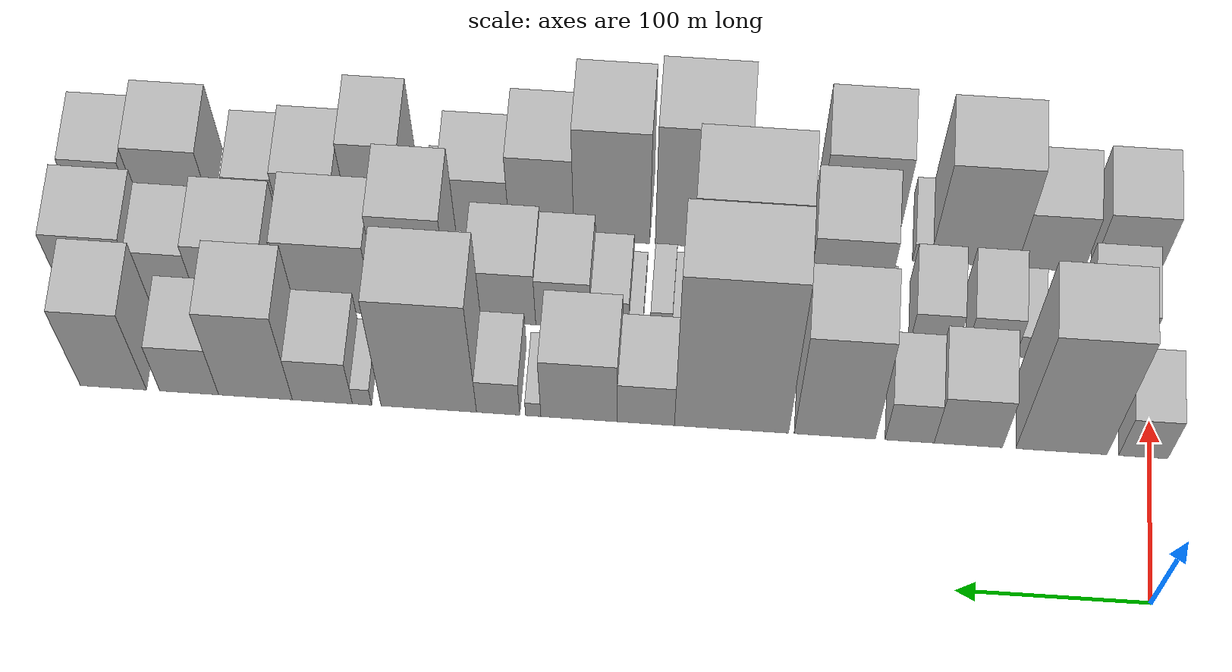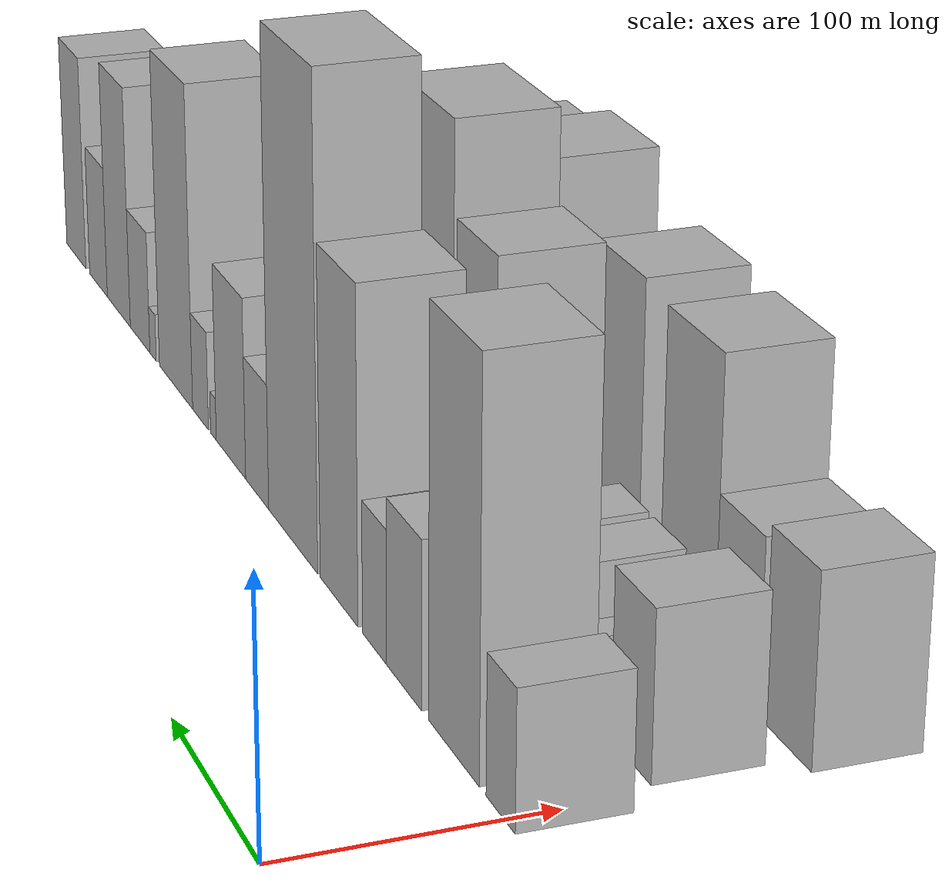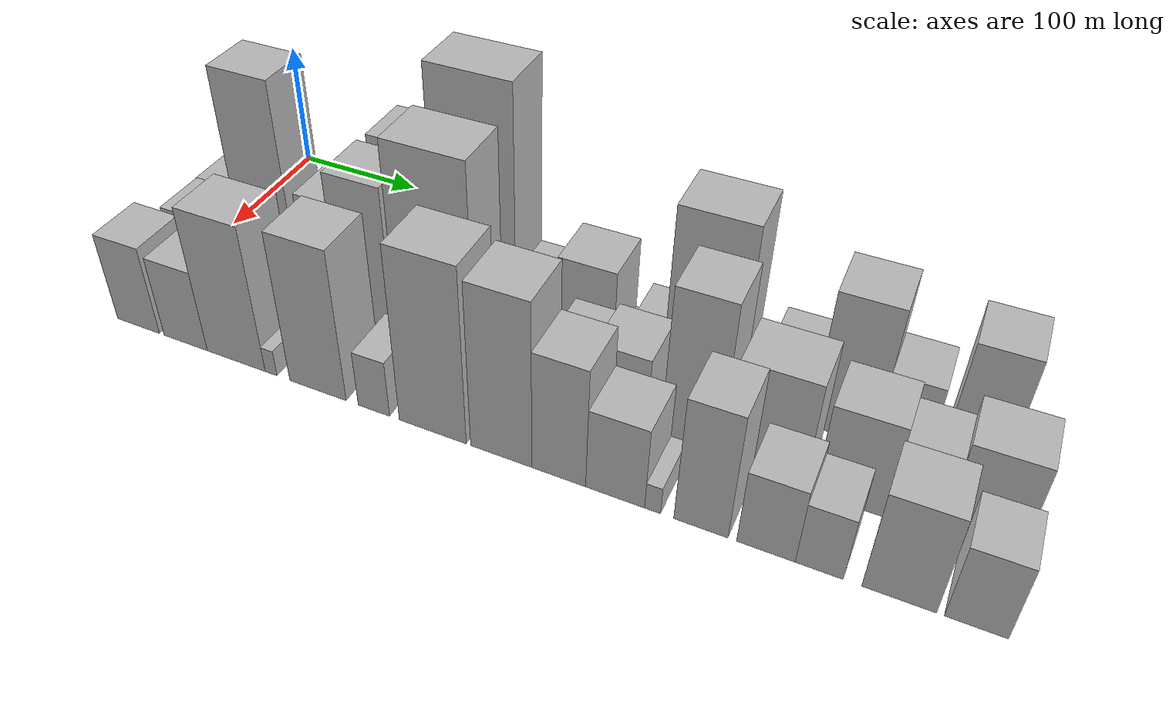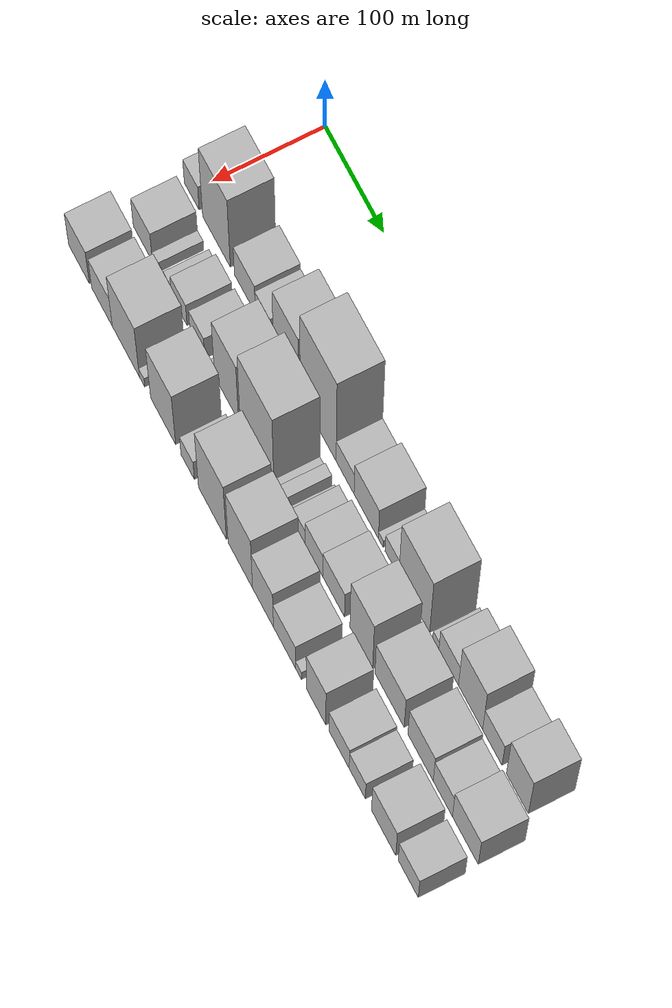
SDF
<sdf version="1.6">
 <world name="default">
  <model name="building_16">
   <static>1</static>
   <pose>100.0000 3.4860 0 0.000000 0.000000 0.000000</pose>
   <link name="link">
    <pose>0 0 25.50 0 0 0</pose>
    <collision name="collision"><geometry><box><size>40.0000 25.7153 51.0000</size></box></geometry></collision>
    <visual name="visual">
     <cast_shadows>0</cast_shadows>
     <geometry><box><size>40.0000 25.7153 51.0000</size></box></geometry>
     <material>
      <script>
       <uri>model://HANNAS_wall/materials/scripts</uri>
       <uri>model://HANNAS_wall/materials/textures</uri>
       <name>vrc/HANNAS_wall</name>
      </script>
     </material>
    </visual>
   </link>
  </model>
  <model name="building_17">
   <static>1</static>
   <pose>100.0000 46.1600 0 0.000000 0.000000 0.000000</pose>
   <link name="link">
    <pose>0 0 75.00 0 0 0</pose>
    <collision name="collision"><geometry><box><size>40.0000 47.6328 150.0000</size></box></geometry></collision>
    <visual name="visual">
     <cast_shadows>0</cast_shadows>
     <geometry><box><size>40.0000 47.6328 150.0000</size></box></geometry>
     <material>
      <script>
       <uri>model://HANNAS_wall/materials/scripts</uri>
       <uri>model://HANNAS_wall/materials/textures</uri>
       <name>vrc/HANNAS_wall</name>
      </script>
     </material>
    </visual>
   </link>
  </model>
  <model name="building_18">
   <static>1</static>
   <pose>100.0000 94.8382 0 0.000000 0.000000 0.000000</pose>
   <link name="link">
    <pose>0 0 31.50 0 0 0</pose>
    <collision name="collision"><geometry><box><size>40.0000 35.7236 63.0000</size></box></geometry></collision>
    <visual name="visual">
     <cast_shadows>0</cast_shadows>
     <geometry><box><size>40.0000 35.7236 63.0000</size></box></geometry>
     <material>
      <script>
       <uri>model://HANNAS_wall/materials/scripts</uri>
       <uri>model://HANNAS_wall/materials/textures</uri>
       <name>vrc/HANNAS_wall</name>
      </script>
     </material>
    </visual>
   </link>
  </model>
  <model name="building_19">
   <static>1</static>
   <pose>100.0000 125.5742 0 0.000000 0.000000 0.000000</pose>
   <link name="link">
    <pose>0 0 25.50 0 0 0</pose>
    <collision name="collision"><geometry><box><size>40.0000 25.7485 51.0000</size></box></geometry></collision>
    <visual name="visual">
     <cast_shadows>0</cast_shadows>
     <geometry><box><size>40.0000 25.7485 51.0000</size></box></geometry>
     <material>
      <script>
       <uri>model://HANNAS_wall/materials/scripts</uri>
       <uri>model://HANNAS_wall/materials/textures</uri>
       <name>vrc/HANNAS_wall</name>
      </script>
     </material>
    </visual>
   </link>
  </model>
  <model name="building_20">
   <static>1</static>
   <pose>100.0000 164.7653 0 0.000000 0.000000 0.000000</pose>
   <link name="link">
    <pose>0 0 64.50 0 0 0</pose>
    <collision name="collision"><geometry><box><size>40.0000 42.6338 129.0000</size></box></geometry></collision>
    <visual name="visual">
     <cast_shadows>0</cast_shadows>
     <geometry><box><size>40.0000 42.6338 129.0000</size></box></geometry>
     <material>
      <script>
       <uri>model://HANNAS_wall/materials/scripts</uri>
       <uri>model://HANNAS_wall/materials/textures</uri>
       <name>vrc/HANNAS_wall</name>
      </script>
     </material>
    </visual>
   </link>
  </model>
  <model name="building_21">
   <static>1</static>
   <pose>100.0000 219.0663 0 0.000000 0.000000 0.000000</pose>
   <link name="link">
    <pose>0 0 96.00 0 0 0</pose>
    <collision name="collision"><geometry><box><size>40.0000 59.9683 192.0000</size></box></geometry></collision>
    <visual name="visual">
     <cast_shadows>0</cast_shadows>
     <geometry><box><size>40.0000 59.9683 192.0000</size></box></geometry>
     <material>
      <script>
       <uri>model://HANNAS_wall/materials/scripts</uri>
       <uri>model://HANNAS_wall/materials/textures</uri>
       <name>vrc/HANNAS_wall</name>
      </script>
     </material>
    </visual>
   </link>
  </model>
  <model name="building_22">
   <static>1</static>
   <pose>100.0000 264.0907 0 0.000000 0.000000 0.000000</pose>
   <link name="link">
    <pose>0 0 25.50 0 0 0</pose>
    <collision name="collision"><geometry><box><size>40.0000 30.0804 51.0000</size></box></geometry></collision>
    <visual name="visual">
     <cast_shadows>0</cast_shadows>
     <geometry><box><size>40.0000 30.0804 51.0000</size></box></geometry>
     <material>
      <script>
       <uri>model://HANNAS_wall/materials/scripts</uri>
       <uri>model://HANNAS_wall/materials/textures</uri>
       <name>vrc/HANNAS_wall</name>
      </script>
     </material>
    </visual>
   </link>
  </model>
  <model name="building_23">
   <static>1</static>
   <pose>100.0000 299.2750 0 0.000000 0.000000 0.000000</pose>
   <link name="link">
    <pose>0 0 37.50 0 0 0</pose>
    <collision name="collision"><geometry><box><size>40.0000 40.2883 75.0000</size></box></geometry></collision>
    <visual name="visual">
     <cast_shadows>0</cast_shadows>
     <geometry><box><size>40.0000 40.2883 75.0000</size></box></geometry>
     <material>
      <script>
       <uri>model://HANNAS_wall/materials/scripts</uri>
       <uri>model://HANNAS_wall/materials/textures</uri>
       <name>vrc/HANNAS_wall</name>
      </script>
     </material>
    </visual>
   </link>
  </model>
  <model name="building_24">
   <static>1</static>
   <pose>100.0000 323.4559 0 0.000000 0.000000 0.000000</pose>
   <link name="link">
    <pose>0 0 9.00 0 0 0</pose>
    <collision name="collision"><geometry><box><size>40.0000 8.0735 18.0000</size></box></geometry></collision>
    <visual name="visual">
     <cast_shadows>0</cast_shadows>
     <geometry><box><size>40.0000 8.0735 18.0000</size></box></geometry>
     <material>
      <script>
       <uri>model://HANNAS_wall/materials/scripts</uri>
       <uri>model://HANNAS_wall/materials/textures</uri>
       <name>vrc/HANNAS_wall</name>
      </script>
     </material>
    </visual>
   </link>
  </model>
  <model name="building_25">
   <static>1</static>
   <pose>100.0000 341.9341 0 0.000000 0.000000 0.000000</pose>
   <link name="link">
    <pose>0 0 21.00 0 0 0</pose>
    <collision name="collision"><geometry><box><size>40.0000 22.8829 42.0000</size></box></geometry></collision>
    <visual name="visual">
     <cast_shadows>0</cast_shadows>
     <geometry><box><size>40.0000 22.8829 42.0000</size></box></geometry>
     <material>
      <script>
       <uri>model://HANNAS_wall/materials/scripts</uri>
       <uri>model://HANNAS_wall/materials/textures</uri>
       <name>vrc/HANNAS_wall</name>
      </script>
     </material>
    </visual>
   </link>
  </model>
  <model name="building_26">
   <static>1</static>
   <pose>100.0000 378.6242 0 0.000000 0.000000 0.000000</pose>
   <link name="link">
    <pose>0 0 69.00 0 0 0</pose>
    <collision name="collision"><geometry><box><size>40.0000 50.4972 138.0000</size></box></geometry></collision>
    <visual name="visual">
     <cast_shadows>0</cast_shadows>
     <geometry><box><size>40.0000 50.4972 138.0000</size></box></geometry>
     <material>
      <script>
       <uri>model://HANNAS_wall/materials/scripts</uri>
       <uri>model://HANNAS_wall/materials/textures</uri>
       <name>vrc/HANNAS_wall</name>
      </script>
     </material>
    </visual>
   </link>
  </model>
  <model name="building_27">
   <static>1</static>
   <pose>100.0000 413.9518 0 0.000000 0.000000 0.000000</pose>
   <link name="link">
    <pose>0 0 10.50 0 0 0</pose>
    <collision name="collision"><geometry><box><size>40.0000 10.1581 21.0000</size></box></geometry></collision>
    <visual name="visual">
     <cast_shadows>0</cast_shadows>
     <geometry><box><size>40.0000 10.1581 21.0000</size></box></geometry>
     <material>
      <script>
       <uri>model://HANNAS_wall/materials/scripts</uri>
       <uri>model://HANNAS_wall/materials/textures</uri>
       <name>vrc/HANNAS_wall</name>
      </script>
     </material>
    </visual>
   </link>
  </model>
  <model name="building_28">
   <static>1</static>
   <pose>100.0000 434.9588 0 0.000000 0.000000 0.000000</pose>
   <link name="link">
    <pose>0 0 27.00 0 0 0</pose>
    <collision name="collision"><geometry><box><size>40.0000 31.8559 54.0000</size></box></geometry></collision>
    <visual name="visual">
     <cast_shadows>0</cast_shadows>
     <geometry><box><size>40.0000 31.8559 54.0000</size></box></geometry>
     <material>
      <script>
       <uri>model://HANNAS_wall/materials/scripts</uri>
       <uri>model://HANNAS_wall/materials/textures</uri>
       <name>vrc/HANNAS_wall</name>
      </script>
     </material>
    </visual>
   </link>
  </model>
  <model name="building_29">
   <static>1</static>
   <pose>100.0000 470.4755 0 0.000000 0.000000 0.000000</pose>
   <link name="link">
    <pose>0 0 54.00 0 0 0</pose>
    <collision name="collision"><geometry><box><size>40.0000 39.1775 108.0000</size></box></geometry></collision>
    <visual name="visual">
     <cast_shadows>0</cast_shadows>
     <geometry><box><size>40.0000 39.1775 108.0000</size></box></geometry>
     <material>
      <script>
       <uri>model://HANNAS_wall/materials/scripts</uri>
       <uri>model://HANNAS_wall/materials/textures</uri>
       <name>vrc/HANNAS_wall</name>
      </script>
     </material>
    </visual>
   </link>
  </model>
  <model name="building_30">
   <static>1</static>
   <pose>100.0000 505.7085 0 0.000000 0.000000 0.000000</pose>
   <link name="link">
    <pose>0 0 30.00 0 0 0</pose>
    <collision name="collision"><geometry><box><size>40.0000 31.2883 60.0000</size></box></geometry></collision>
    <visual name="visual">
     <cast_shadows>0</cast_shadows>
     <geometry><box><size>40.0000 31.2883 60.0000</size></box></geometry>
     <material>
      <script>
       <uri>model://HANNAS_wall/materials/scripts</uri>
       <uri>model://HANNAS_wall/materials/textures</uri>
       <name>vrc/HANNAS_wall</name>
      </script>
     </material>
    </visual>
   </link>
  </model>
  <model name="building_31">
   <static>1</static>
   <pose>100.0000 545.9888 0 0.000000 0.000000 0.000000</pose>
   <link name="link">
    <pose>0 0 49.50 0 0 0</pose>
    <collision name="collision"><geometry><box><size>40.0000 35.2724 99.0000</size></box></geometry></collision>
    <visual name="visual">
     <cast_shadows>0</cast_shadows>
     <geometry><box><size>40.0000 35.2724 99.0000</size></box></geometry>
     <material>
      <script>
       <uri>model://HANNAS_wall/materials/scripts</uri>
       <uri>model://HANNAS_wall/materials/textures</uri>
       <name>vrc/HANNAS_wall</name>
      </script>
     </material>
    </visual>
   </link>
  </model>
  <model name="building_48">
   <static>1</static>
   <pose>152.0000 21.1618 0 0.000000 0.000000 0.000000</pose>
   <link name="link">
    <pose>0 0 31.50 0 0 0</pose>
    <collision name="collision"><geometry><box><size>40.0000 33.1326 63.0000</size></box></geometry></collision>
    <visual name="visual">
     <cast_shadows>0</cast_shadows>
     <geometry><box><size>40.0000 33.1326 63.0000</size></box></geometry>
     <material>
      <script>
       <uri>model://HANNAS_wall/materials/scripts</uri>
       <uri>model://HANNAS_wall/materials/textures</uri>
       <name>vrc/HANNAS_wall</name>
      </script>
     </material>
    </visual>
   </link>
  </model>
  <model name="building_49">
   <static>1</static>
   <pose>152.0000 42.7620 0 0.000000 0.000000 0.000000</pose>
   <link name="link">
    <pose>0 0 10.50 0 0 0</pose>
    <collision name="collision"><geometry><box><size>40.0000 10.0676 21.0000</size></box></geometry></collision>
    <visual name="visual">
     <cast_shadows>0</cast_shadows>
     <geometry><box><size>40.0000 10.0676 21.0000</size></box></geometry>
     <material>
      <script>
       <uri>model://HANNAS_wall/materials/scripts</uri>
       <uri>model://HANNAS_wall/materials/textures</uri>
       <name>vrc/HANNAS_wall</name>
      </script>
     </material>
    </visual>
   </link>
  </model>
  <model name="building_50">
   <static>1</static>
   <pose>152.0000 64.2689 0 0.000000 0.000000 0.000000</pose>
   <link name="link">
    <pose>0 0 13.50 0 0 0</pose>
    <collision name="collision"><geometry><box><size>40.0000 12.9463 27.0000</size></box></geometry></collision>
    <visual name="visual">
     <cast_shadows>0</cast_shadows>
     <geometry><box><size>40.0000 12.9463 27.0000</size></box></geometry>
     <material>
      <script>
       <uri>model://HANNAS_wall/materials/scripts</uri>
       <uri>model://HANNAS_wall/materials/textures</uri>
       <name>vrc/HANNAS_wall</name>
      </script>
     </material>
    </visual>
   </link>
  </model>
  <model name="building_51">
   <static>1</static>
   <pose>152.0000 84.0770 0 0.000000 0.000000 0.000000</pose>
   <link name="link">
    <pose>0 0 24.00 0 0 0</pose>
    <collision name="collision"><geometry><box><size>40.0000 26.6699 48.0000</size></box></geometry></collision>
    <visual name="visual">
     <cast_shadows>0</cast_shadows>
     <geometry><box><size>40.0000 26.6699 48.0000</size></box></geometry>
     <material>
      <script>
       <uri>model://HANNAS_wall/materials/scripts</uri>
       <uri>model://HANNAS_wall/materials/textures</uri>
       <name>vrc/HANNAS_wall</name>
      </script>
     </material>
    </visual>
   </link>
  </model>
  <model name="building_52">
   <static>1</static>
   <pose>152.0000 115.1577 0 0.000000 0.000000 0.000000</pose>
   <link name="link">
    <pose>0 0 24.00 0 0 0</pose>
    <collision name="collision"><geometry><box><size>40.0000 25.4915 48.0000</size></box></geometry></collision>
    <visual name="visual">
     <cast_shadows>0</cast_shadows>
     <geometry><box><size>40.0000 25.4915 48.0000</size></box></geometry>
     <material>
      <script>
       <uri>model://HANNAS_wall/materials/scripts</uri>
       <uri>model://HANNAS_wall/materials/textures</uri>
       <name>vrc/HANNAS_wall</name>
      </script>
     </material>
    </visual>
   </link>
  </model>
  <model name="building_53">
   <static>1</static>
   <pose>152.0000 140.2911 0 0.000000 0.000000 0.000000</pose>
   <link name="link">
    <pose>0 0 9.00 0 0 0</pose>
    <collision name="collision"><geometry><box><size>40.0000 8.7753 18.0000</size></box></geometry></collision>
    <visual name="visual">
     <cast_shadows>0</cast_shadows>
     <geometry><box><size>40.0000 8.7753 18.0000</size></box></geometry>
     <material>
      <script>
       <uri>model://HANNAS_wall/materials/scripts</uri>
       <uri>model://HANNAS_wall/materials/textures</uri>
       <name>vrc/HANNAS_wall</name>
      </script>
     </material>
    </visual>
   </link>
  </model>
  <model name="building_54">
   <static>1</static>
   <pose>152.0000 164.9378 0 0.000000 0.000000 0.000000</pose>
   <link name="link">
    <pose>0 0 66.00 0 0 0</pose>
    <collision name="collision"><geometry><box><size>40.0000 40.5182 132.0000</size></box></geometry></collision>
    <visual name="visual">
     <cast_shadows>0</cast_shadows>
     <geometry><box><size>40.0000 40.5182 132.0000</size></box></geometry>
     <material>
      <script>
       <uri>model://HANNAS_wall/materials/scripts</uri>
       <uri>model://HANNAS_wall/materials/textures</uri>
       <name>vrc/HANNAS_wall</name>
      </script>
     </material>
    </visual>
   </link>
  </model>
  <model name="building_55">
   <static>1</static>
   <pose>152.0000 216.6067 0 0.000000 0.000000 0.000000</pose>
   <link name="link">
    <pose>0 0 84.00 0 0 0</pose>
    <collision name="collision"><geometry><box><size>40.0000 56.8195 168.0000</size></box></geometry></collision>
    <visual name="visual">
     <cast_shadows>0</cast_shadows>
     <geometry><box><size>40.0000 56.8195 168.0000</size></box></geometry>
     <material>
      <script>
       <uri>model://HANNAS_wall/materials/scripts</uri>
       <uri>model://HANNAS_wall/materials/textures</uri>
       <name>vrc/HANNAS_wall</name>
      </script>
     </material>
    </visual>
   </link>
  </model>
  <model name="building_56">
   <static>1</static>
   <pose>152.0000 249.3709 0 0.000000 0.000000 0.000000</pose>
   <link name="link">
    <pose>0 0 9.00 0 0 0</pose>
    <collision name="collision"><geometry><box><size>40.0000 8.7090 18.0000</size></box></geometry></collision>
    <visual name="visual">
     <cast_shadows>0</cast_shadows>
     <geometry><box><size>40.0000 8.7090 18.0000</size></box></geometry>
     <material>
      <script>
       <uri>model://HANNAS_wall/materials/scripts</uri>
       <uri>model://HANNAS_wall/materials/textures</uri>
       <name>vrc/HANNAS_wall</name>
      </script>
     </material>
    </visual>
   </link>
  </model>
  <model name="building_57">
   <static>1</static>
   <pose>152.0000 259.5027 0 0.000000 0.000000 0.000000</pose>
   <link name="link">
    <pose>0 0 13.50 0 0 0</pose>
    <collision name="collision"><geometry><box><size>40.0000 11.5546 27.0000</size></box></geometry></collision>
    <visual name="visual">
     <cast_shadows>0</cast_shadows>
     <geometry><box><size>40.0000 11.5546 27.0000</size></box></geometry>
     <material>
      <script>
       <uri>model://HANNAS_wall/materials/scripts</uri>
       <uri>model://HANNAS_wall/materials/textures</uri>
       <name>vrc/HANNAS_wall</name>
      </script>
     </material>
    </visual>
   </link>
  </model>
  <model name="building_58">
   <static>1</static>
   <pose>152.0000 272.9842 0 0.000000 0.000000 0.000000</pose>
   <link name="link">
    <pose>0 0 7.50 0 0 0</pose>
    <collision name="collision"><geometry><box><size>40.0000 7.4084 15.0000</size></box></geometry></collision>
    <visual name="visual">
     <cast_shadows>0</cast_shadows>
     <geometry><box><size>40.0000 7.4084 15.0000</size></box></geometry>
     <material>
      <script>
       <uri>model://HANNAS_wall/materials/scripts</uri>
       <uri>model://HANNAS_wall/materials/textures</uri>
       <name>vrc/HANNAS_wall</name>
      </script>
     </material>
    </visual>
   </link>
  </model>
  <model name="building_59">
   <static>1</static>
   <pose>152.0000 286.9562 0 0.000000 0.000000 0.000000</pose>
   <link name="link">
    <pose>0 0 18.00 0 0 0</pose>
    <collision name="collision"><geometry><box><size>40.0000 20.5356 36.0000</size></box></geometry></collision>
    <visual name="visual">
     <cast_shadows>0</cast_shadows>
     <geometry><box><size>40.0000 20.5356 36.0000</size></box></geometry>
     <material>
      <script>
       <uri>model://HANNAS_wall/materials/scripts</uri>
       <uri>model://HANNAS_wall/materials/textures</uri>
       <name>vrc/HANNAS_wall</name>
      </script>
     </material>
    </visual>
   </link>
  </model>
  <model name="building_60">
   <static>1</static>
   <pose>152.0000 311.8248 0 0.000000 0.000000 0.000000</pose>
   <link name="link">
    <pose>0 0 28.50 0 0 0</pose>
    <collision name="collision"><geometry><box><size>40.0000 29.2014 57.0000</size></box></geometry></collision>
    <visual name="visual">
     <cast_shadows>0</cast_shadows>
     <geometry><box><size>40.0000 29.2014 57.0000</size></box></geometry>
     <material>
      <script>
       <uri>model://HANNAS_wall/materials/scripts</uri>
       <uri>model://HANNAS_wall/materials/textures</uri>
       <name>vrc/HANNAS_wall</name>
      </script>
     </material>
    </visual>
   </link>
  </model>
  <model name="building_61">
   <static>1</static>
   <pose>152.0000 344.5707 0 0.000000 0.000000 0.000000</pose>
   <link name="link">
    <pose>0 0 31.50 0 0 0</pose>
    <collision name="collision"><geometry><box><size>40.0000 36.2905 63.0000</size></box></geometry></collision>
    <visual name="visual">
     <cast_shadows>0</cast_shadows>
     <geometry><box><size>40.0000 36.2905 63.0000</size></box></geometry>
     <material>
      <script>
       <uri>model://HANNAS_wall/materials/scripts</uri>
       <uri>model://HANNAS_wall/materials/textures</uri>
       <name>vrc/HANNAS_wall</name>
      </script>
     </material>
    </visual>
   </link>
  </model>
  <model name="building_62">
   <static>1</static>
   <pose>152.0000 390.3841 0 0.000000 0.000000 0.000000</pose>
   <link name="link">
    <pose>0 0 61.50 0 0 0</pose>
    <collision name="collision"><geometry><box><size>40.0000 37.3363 123.0000</size></box></geometry></collision>
    <visual name="visual">
     <cast_shadows>0</cast_shadows>
     <geometry><box><size>40.0000 37.3363 123.0000</size></box></geometry>
     <material>
      <script>
       <uri>model://HANNAS_wall/materials/scripts</uri>
       <uri>model://HANNAS_wall/materials/textures</uri>
       <name>vrc/HANNAS_wall</name>
      </script>
     </material>
    </visual>
   </link>
  </model>
  <model name="building_63">
   <static>1</static>
   <pose>152.0000 436.9797 0 0.000000 0.000000 0.000000</pose>
   <link name="link">
    <pose>0 0 42.00 0 0 0</pose>
    <collision name="collision"><geometry><box><size>40.0000 47.8548 84.0000</size></box></geometry></collision>
    <visual name="visual">
     <cast_shadows>0</cast_shadows>
     <geometry><box><size>40.0000 47.8548 84.0000</size></box></geometry>
     <material>
      <script>
       <uri>model://HANNAS_wall/materials/scripts</uri>
       <uri>model://HANNAS_wall/materials/textures</uri>
       <name>vrc/HANNAS_wall</name>
      </script>
     </material>
    </visual>
   </link>
  </model>
  <model name="building_64">
   <static>1</static>
   <pose>152.0000 487.4974 0 0.000000 0.000000 0.000000</pose>
   <link name="link">
    <pose>0 0 36.00 0 0 0</pose>
    <collision name="collision"><geometry><box><size>40.0000 41.1808 72.0000</size></box></geometry></collision>
    <visual name="visual">
     <cast_shadows>0</cast_shadows>
     <geometry><box><size>40.0000 41.1808 72.0000</size></box></geometry>
     <material>
      <script>
       <uri>model://HANNAS_wall/materials/scripts</uri>
       <uri>model://HANNAS_wall/materials/textures</uri>
       <name>vrc/HANNAS_wall</name>
      </script>
     </material>
    </visual>
   </link>
  </model>
  <model name="building_65">
   <static>1</static>
   <pose>152.0000 523.5968 0 0.000000 0.000000 0.000000</pose>
   <link name="link">
    <pose>0 0 30.00 0 0 0</pose>
    <collision name="collision"><geometry><box><size>40.0000 31.0179 60.0000</size></box></geometry></collision>
    <visual name="visual">
     <cast_shadows>0</cast_shadows>
     <geometry><box><size>40.0000 31.0179 60.0000</size></box></geometry>
     <material>
      <script>
       <uri>model://HANNAS_wall/materials/scripts</uri>
       <uri>model://HANNAS_wall/materials/textures</uri>
       <name>vrc/HANNAS_wall</name>
      </script>
     </material>
    </visual>
   </link>
  </model>
  <model name="building_66">
   <static>1</static>
   <pose>152.0000 559.9212 0 0.000000 0.000000 0.000000</pose>
   <link name="link">
    <pose>0 0 37.50 0 0 0</pose>
    <collision name="collision"><geometry><box><size>40.0000 41.6310 75.0000</size></box></geometry></collision>
    <visual name="visual">
     <cast_shadows>0</cast_shadows>
     <geometry><box><size>40.0000 41.6310 75.0000</size></box></geometry>
     <material>
      <script>
       <uri>model://HANNAS_wall/materials/scripts</uri>
       <uri>model://HANNAS_wall/materials/textures</uri>
       <name>vrc/HANNAS_wall</name>
      </script>
     </material>
    </visual>
   </link>
  </model>
  <model name="building_86">
   <static>1</static>
   <pose>204.0000 13.1575 0 0.000000 0.000000 0.000000</pose>
   <link name="link">
    <pose>0 0 36.00 0 0 0</pose>
    <collision name="collision"><geometry><box><size>40.0000 36.0670 72.0000</size></box></geometry></collision>
    <visual name="visual">
     <cast_shadows>0</cast_shadows>
     <geometry><box><size>40.0000 36.0670 72.0000</size></box></geometry>
     <material>
      <script>
       <uri>model://HANNAS_wall/materials/scripts</uri>
       <uri>model://HANNAS_wall/materials/textures</uri>
       <name>vrc/HANNAS_wall</name>
      </script>
     </material>
    </visual>
   </link>
  </model>
  <model name="building_87">
   <static>1</static>
   <pose>204.0000 53.1806 0 0.000000 0.000000 0.000000</pose>
   <link name="link">
    <pose>0 0 33.00 0 0 0</pose>
    <collision name="collision"><geometry><box><size>40.0000 35.9793 66.0000</size></box></geometry></collision>
    <visual name="visual">
     <cast_shadows>0</cast_shadows>
     <geometry><box><size>40.0000 35.9793 66.0000</size></box></geometry>
     <material>
      <script>
       <uri>model://HANNAS_wall/materials/scripts</uri>
       <uri>model://HANNAS_wall/materials/textures</uri>
       <name>vrc/HANNAS_wall</name>
      </script>
     </material>
    </visual>
   </link>
  </model>
  <model name="building_88">
   <static>1</static>
   <pose>204.0000 94.5277 0 0.000000 0.000000 0.000000</pose>
   <link name="link">
    <pose>0 0 58.50 0 0 0</pose>
    <collision name="collision"><geometry><box><size>40.0000 46.7149 117.0000</size></box></geometry></collision>
    <visual name="visual">
     <cast_shadows>0</cast_shadows>
     <geometry><box><size>40.0000 46.7149 117.0000</size></box></geometry>
     <material>
      <script>
       <uri>model://HANNAS_wall/materials/scripts</uri>
       <uri>model://HANNAS_wall/materials/textures</uri>
       <name>vrc/HANNAS_wall</name>
      </script>
     </material>
    </visual>
   </link>
  </model>
  <model name="building_89">
   <static>1</static>
   <pose>204.0000 122.5252 0 0.000000 0.000000 0.000000</pose>
   <link name="link">
    <pose>0 0 10.50 0 0 0</pose>
    <collision name="collision"><geometry><box><size>40.0000 9.2803 21.0000</size></box></geometry></collision>
    <visual name="visual">
     <cast_shadows>0</cast_shadows>
     <geometry><box><size>40.0000 9.2803 21.0000</size></box></geometry>
     <material>
      <script>
       <uri>model://HANNAS_wall/materials/scripts</uri>
       <uri>model://HANNAS_wall/materials/textures</uri>
       <name>vrc/HANNAS_wall</name>
      </script>
     </material>
    </visual>
   </link>
  </model>
  <model name="building_90">
   <static>1</static>
   <pose>204.0000 158.5972 0 0.000000 0.000000 0.000000</pose>
   <link name="link">
    <pose>0 0 60.00 0 0 0</pose>
    <collision name="collision"><geometry><box><size>40.0000 42.8636 120.0000</size></box></geometry></collision>
    <visual name="visual">
     <cast_shadows>0</cast_shadows>
     <geometry><box><size>40.0000 42.8636 120.0000</size></box></geometry>
     <material>
      <script>
       <uri>model://HANNAS_wall/materials/scripts</uri>
       <uri>model://HANNAS_wall/materials/textures</uri>
       <name>vrc/HANNAS_wall</name>
      </script>
     </material>
    </visual>
   </link>
  </model>
  <model name="building_91">
   <static>1</static>
   <pose>204.0000 200.4703 0 0.000000 0.000000 0.000000</pose>
   <link name="link">
    <pose>0 0 22.50 0 0 0</pose>
    <collision name="collision"><geometry><box><size>40.0000 22.8826 45.0000</size></box></geometry></collision>
    <visual name="visual">
     <cast_shadows>0</cast_shadows>
     <geometry><box><size>40.0000 22.8826 45.0000</size></box></geometry>
     <material>
      <script>
       <uri>model://HANNAS_wall/materials/scripts</uri>
       <uri>model://HANNAS_wall/materials/textures</uri>
       <name>vrc/HANNAS_wall</name>
      </script>
     </material>
    </visual>
   </link>
  </model>
  <model name="building_92">
   <static>1</static>
   <pose>204.0000 242.4706 0 0.000000 0.000000 0.000000</pose>
   <link name="link">
    <pose>0 0 69.00 0 0 0</pose>
    <collision name="collision"><geometry><box><size>40.0000 47.1180 138.0000</size></box></geometry></collision>
    <visual name="visual">
     <cast_shadows>0</cast_shadows>
     <geometry><box><size>40.0000 47.1180 138.0000</size></box></geometry>
     <material>
      <script>
       <uri>model://HANNAS_wall/materials/scripts</uri>
       <uri>model://HANNAS_wall/materials/textures</uri>
       <name>vrc/HANNAS_wall</name>
      </script>
     </material>
    </visual>
   </link>
  </model>
  <model name="building_93">
   <static>1</static>
   <pose>204.0000 289.5169 0 0.000000 0.000000 0.000000</pose>
   <link name="link">
    <pose>0 0 64.50 0 0 0</pose>
    <collision name="collision"><geometry><box><size>40.0000 40.9747 129.0000</size></box></geometry></collision>
    <visual name="visual">
     <cast_shadows>0</cast_shadows>
     <geometry><box><size>40.0000 40.9747 129.0000</size></box></geometry>
     <material>
      <script>
       <uri>model://HANNAS_wall/materials/scripts</uri>
       <uri>model://HANNAS_wall/materials/textures</uri>
       <name>vrc/HANNAS_wall</name>
      </script>
     </material>
    </visual>
   </link>
  </model>
  <model name="building_94">
   <static>1</static>
   <pose>204.0000 327.4829 0 0.000000 0.000000 0.000000</pose>
   <link name="link">
    <pose>0 0 46.50 0 0 0</pose>
    <collision name="collision"><geometry><box><size>40.0000 34.9572 93.0000</size></box></geometry></collision>
    <visual name="visual">
     <cast_shadows>0</cast_shadows>
     <geometry><box><size>40.0000 34.9572 93.0000</size></box></geometry>
     <material>
      <script>
       <uri>model://HANNAS_wall/materials/scripts</uri>
       <uri>model://HANNAS_wall/materials/textures</uri>
       <name>vrc/HANNAS_wall</name>
      </script>
     </material>
    </visual>
   </link>
  </model>
  <model name="building_95">
   <static>1</static>
   <pose>204.0000 363.3691 0 0.000000 0.000000 0.000000</pose>
   <link name="link">
    <pose>0 0 31.50 0 0 0</pose>
    <collision name="collision"><geometry><box><size>40.0000 36.8152 63.0000</size></box></geometry></collision>
    <visual name="visual">
     <cast_shadows>0</cast_shadows>
     <geometry><box><size>40.0000 36.8152 63.0000</size></box></geometry>
     <material>
      <script>
       <uri>model://HANNAS_wall/materials/scripts</uri>
       <uri>model://HANNAS_wall/materials/textures</uri>
       <name>vrc/HANNAS_wall</name>
      </script>
     </material>
    </visual>
   </link>
  </model>
  <model name="building_96">
   <static>1</static>
   <pose>204.0000 386.6671 0 0.000000 0.000000 0.000000</pose>
   <link name="link">
    <pose>0 0 10.50 0 0 0</pose>
    <collision name="collision"><geometry><box><size>40.0000 9.7809 21.0000</size></box></geometry></collision>
    <visual name="visual">
     <cast_shadows>0</cast_shadows>
     <geometry><box><size>40.0000 9.7809 21.0000</size></box></geometry>
     <material>
      <script>
       <uri>model://HANNAS_wall/materials/scripts</uri>
       <uri>model://HANNAS_wall/materials/textures</uri>
       <name>vrc/HANNAS_wall</name>
      </script>
     </material>
    </visual>
   </link>
  </model>
  <model name="building_97">
   <static>1</static>
   <pose>204.0000 415.6422 0 0.000000 0.000000 0.000000</pose>
   <link name="link">
    <pose>0 0 48.00 0 0 0</pose>
    <collision name="collision"><geometry><box><size>40.0000 32.1692 96.0000</size></box></geometry></collision>
    <visual name="visual">
     <cast_shadows>0</cast_shadows>
     <geometry><box><size>40.0000 32.1692 96.0000</size></box></geometry>
     <material>
      <script>
       <uri>model://HANNAS_wall/materials/scripts</uri>
       <uri>model://HANNAS_wall/materials/textures</uri>
       <name>vrc/HANNAS_wall</name>
      </script>
     </material>
    </visual>
   </link>
  </model>
  <model name="building_98">
   <static>1</static>
   <pose>204.0000 453.3986 0 0.000000 0.000000 0.000000</pose>
   <link name="link">
    <pose>0 0 28.50 0 0 0</pose>
    <collision name="collision"><geometry><box><size>40.0000 33.3435 57.0000</size></box></geometry></collision>
    <visual name="visual">
     <cast_shadows>0</cast_shadows>
     <geometry><box><size>40.0000 33.3435 57.0000</size></box></geometry>
     <material>
      <script>
       <uri>model://HANNAS_wall/materials/scripts</uri>
       <uri>model://HANNAS_wall/materials/textures</uri>
       <name>vrc/HANNAS_wall</name>
      </script>
     </material>
    </visual>
   </link>
  </model>
  <model name="building_99">
   <static>1</static>
   <pose>204.0000 483.3283 0 0.000000 0.000000 0.000000</pose>
   <link name="link">
    <pose>0 0 24.00 0 0 0</pose>
    <collision name="collision"><geometry><box><size>40.0000 26.5160 48.0000</size></box></geometry></collision>
    <visual name="visual">
     <cast_shadows>0</cast_shadows>
     <geometry><box><size>40.0000 26.5160 48.0000</size></box></geometry>
     <material>
      <script>
       <uri>model://HANNAS_wall/materials/scripts</uri>
       <uri>model://HANNAS_wall/materials/textures</uri>
       <name>vrc/HANNAS_wall</name>
      </script>
     </material>
    </visual>
   </link>
  </model>
  <model name="building_100">
   <static>1</static>
   <pose>204.0000 526.3014 0 0.000000 0.000000 0.000000</pose>
   <link name="link">
    <pose>0 0 37.50 0 0 0</pose>
    <collision name="collision"><geometry><box><size>40.0000 39.4301 75.0000</size></box></geometry></collision>
    <visual name="visual">
     <cast_shadows>0</cast_shadows>
     <geometry><box><size>40.0000 39.4301 75.0000</size></box></geometry>
     <material>
      <script>
       <uri>model://HANNAS_wall/materials/scripts</uri>
       <uri>model://HANNAS_wall/materials/textures</uri>
       <name>vrc/HANNAS_wall</name>
      </script>
     </material>
    </visual>
   </link>
  </model>
  <model name="building_101">
   <static>1</static>
   <pose>204.0000 566.1835 0 0.000000 0.000000 0.000000</pose>
   <link name="link">
    <pose>0 0 28.50 0 0 0</pose>
    <collision name="collision"><geometry><box><size>40.0000 32.3341 57.0000</size></box></geometry></collision>
    <visual name="visual">
     <cast_shadows>0</cast_shadows>
     <geometry><box><size>40.0000 32.3341 57.0000</size></box></geometry>
     <material>
      <script>
       <uri>model://HANNAS_wall/materials/scripts</uri>
       <uri>model://HANNAS_wall/materials/textures</uri>
       <name>vrc/HANNAS_wall</name>
      </script>
     </material>
    </visual>
   </link>
  </model>
 </world>
</sdf>
